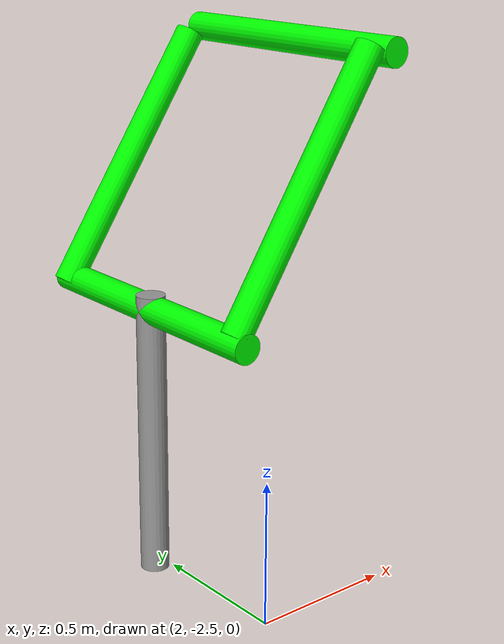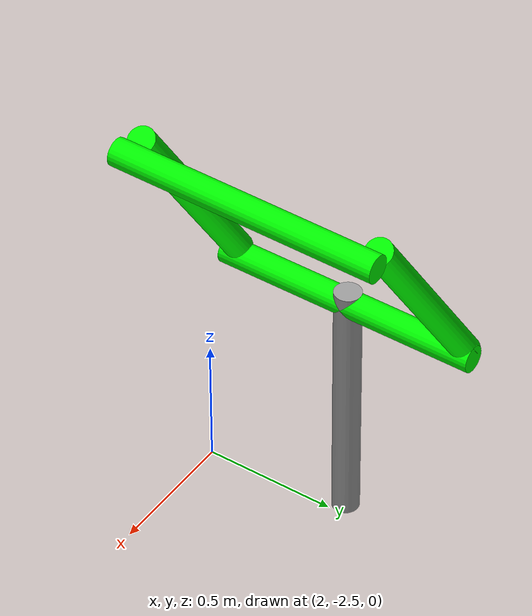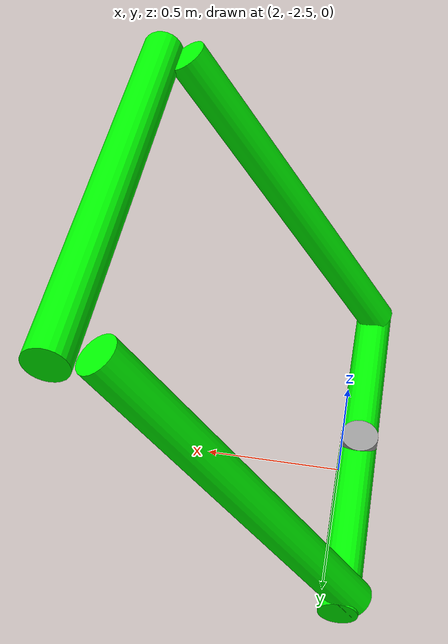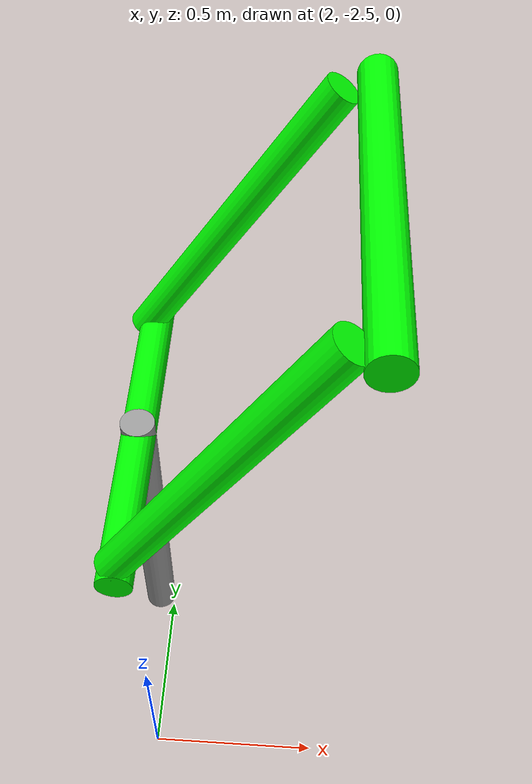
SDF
<?xml version='1.0'?>
<sdf version='1.7'>
  <model name='Gate_60'>
    <link name='link_0'>
      <inertial>
        <mass>0</mass>
        <inertia>
          <ixx>0</ixx>
          <ixy>0</ixy>
          <ixz>0</ixz>
          <iyy>0</iyy>
          <iyz>0</iyz>
          <izz>0</izz>
        </inertia>
        <pose>0 0 0 0 -0 0</pose>
      </inertial>
      <pose>2.20972 -2.41228 1.39604 0 0.567371 0</pose>
      <gravity>1</gravity>
      <self_collide>0</self_collide>
      <kinematic>0</kinematic>
      <enable_wind>0</enable_wind>
      <visual name='visual'>
        <pose>0 0 0 0 -0 0</pose>
        <geometry>
          <cylinder>
            <radius>0.05</radius>
            <length>1</length>
          </cylinder>
        </geometry>
        <material>
          <lighting>1</lighting>
          <script>
            <uri>file://media/materials/scripts/gazebo.material</uri>
            <name>Gazebo/Grey</name>
          </script>
          <shader type='pixel'>
            <normal_map>__default__</normal_map>
          </shader>
          <ambient>0 1 0 0</ambient>
          <diffuse>0 1 0 0</diffuse>
          <specular>0 1 0 0</specular>
          <emissive>0 1 0 0</emissive>
        </material>
        <transparency>0</transparency>
        <cast_shadows>1</cast_shadows>
      </visual>
      <collision name='collision'>
        <laser_retro>0</laser_retro>
        <max_contacts>10</max_contacts>
        <pose>0 0 0 0 -0 0</pose>
        <geometry>
          <cylinder>
            <radius>0.05</radius>
            <length>1</length>
          </cylinder>
        </geometry>
        <surface>
          <friction>
            <ode>
              <mu>1</mu>
              <mu2>1</mu2>
              <fdir1>0 0 0</fdir1>
              <slip1>0</slip1>
              <slip2>0</slip2>
            </ode>
            <torsional>
              <coefficient>1</coefficient>
              <patch_radius>0</patch_radius>
              <surface_radius>0</surface_radius>
              <use_patch_radius>1</use_patch_radius>
              <ode>
                <slip>0</slip>
              </ode>
            </torsional>
          </friction>
          <bounce>
            <restitution_coefficient>0</restitution_coefficient>
            <threshold>1e+06</threshold>
          </bounce>
          <contact>
            <collide_without_contact>0</collide_without_contact>
            <collide_without_contact_bitmask>1</collide_without_contact_bitmask>
            <collide_bitmask>1</collide_bitmask>
            <ode>
              <soft_cfm>0</soft_cfm>
              <soft_erp>0.2</soft_erp>
              <kp>1e+13</kp>
              <kd>1</kd>
              <max_vel>0.01</max_vel>
              <min_depth>0</min_depth>
            </ode>
            <bullet>
              <split_impulse>1</split_impulse>
              <split_impulse_penetration_threshold>-0.01</split_impulse_penetration_threshold>
              <soft_cfm>0</soft_cfm>
              <soft_erp>0.2</soft_erp>
              <kp>1e+13</kp>
              <kd>1</kd>
            </bullet>
          </contact>
        </surface>
      </collision>
    </link>
    <link name='link_0_clone'>
      <inertial>
        <mass>0</mass>
        <inertia>
          <ixx>0</ixx>
          <ixy>0</ixy>
          <ixz>0</ixz>
          <iyy>0</iyy>
          <iyz>0</iyz>
          <izz>0</izz>
        </inertia>
        <pose>0 0 0 0 -0 0</pose>
      </inertial>
      <pose>2.18918 -1.5122 1.35864 0 0.584194 0</pose>
      <gravity>1</gravity>
      <self_collide>0</self_collide>
      <kinematic>0</kinematic>
      <enable_wind>0</enable_wind>
      <visual name='visual'>
        <pose>0 0 0 0 -0 0</pose>
        <geometry>
          <cylinder>
            <radius>0.05</radius>
            <length>1</length>
          </cylinder>
        </geometry>
        <material>
          <lighting>1</lighting>
          <script>
            <uri>file://media/materials/scripts/gazebo.material</uri>
            <name>Gazebo/Grey</name>
          </script>
          <shader type='pixel'>
            <normal_map>__default__</normal_map>
          </shader>
          <ambient>0 1 0 0</ambient>
          <diffuse>0 1 0 0</diffuse>
          <specular>0 1 0 0</specular>
          <emissive>0 1 0 0</emissive>
        </material>
        <transparency>0</transparency>
        <cast_shadows>1</cast_shadows>
      </visual>
      <collision name='collision'>
        <laser_retro>0</laser_retro>
        <max_contacts>10</max_contacts>
        <pose>0 0 0 0 -0 0</pose>
        <geometry>
          <cylinder>
            <radius>0.05</radius>
            <length>1</length>
          </cylinder>
        </geometry>
        <surface>
          <friction>
            <ode>
              <mu>1</mu>
              <mu2>1</mu2>
              <fdir1>0 0 0</fdir1>
              <slip1>0</slip1>
              <slip2>0</slip2>
            </ode>
            <torsional>
              <coefficient>1</coefficient>
              <patch_radius>0</patch_radius>
              <surface_radius>0</surface_radius>
              <use_patch_radius>1</use_patch_radius>
              <ode>
                <slip>0</slip>
              </ode>
            </torsional>
          </friction>
          <bounce>
            <restitution_coefficient>0</restitution_coefficient>
            <threshold>1e+06</threshold>
          </bounce>
          <contact>
            <collide_without_contact>0</collide_without_contact>
            <collide_without_contact_bitmask>1</collide_without_contact_bitmask>
            <collide_bitmask>1</collide_bitmask>
            <ode>
              <soft_cfm>0</soft_cfm>
              <soft_erp>0.2</soft_erp>
              <kp>1e+13</kp>
              <kd>1</kd>
              <max_vel>0.01</max_vel>
              <min_depth>0</min_depth>
            </ode>
            <bullet>
              <split_impulse>1</split_impulse>
              <split_impulse_penetration_threshold>-0.01</split_impulse_penetration_threshold>
              <soft_cfm>0</soft_cfm>
              <soft_erp>0.2</soft_erp>
              <kp>1e+13</kp>
              <kd>1</kd>
            </bullet>
          </contact>
        </surface>
      </collision>
    </link>
    <link name='link_0_clone_0'>
      <inertial>
        <mass>0</mass>
        <inertia>
          <ixx>0</ixx>
          <ixy>0</ixy>
          <ixz>0</ixz>
          <iyy>0</iyy>
          <iyz>0</iyz>
          <izz>0</izz>
        </inertia>
        <pose>0 0 0 0 -0 0</pose>
      </inertial>
      <pose>2.5465 -1.96195 1.7911 1.56387 -0 0</pose>
      <gravity>1</gravity>
      <self_collide>0</self_collide>
      <kinematic>0</kinematic>
      <enable_wind>0</enable_wind>
      <visual name='visual'>
        <pose>0 0 0 0 -0 0</pose>
        <geometry>
          <cylinder>
            <radius>0.05</radius>
            <length>1</length>
          </cylinder>
        </geometry>
        <material>
          <lighting>1</lighting>
          <script>
            <uri>file://media/materials/scripts/gazebo.material</uri>
            <name>Gazebo/Grey</name>
          </script>
          <shader type='pixel'>
            <normal_map>__default__</normal_map>
          </shader>
          <ambient>0 1 0 0</ambient>
          <diffuse>0 1 0 0</diffuse>
          <specular>0 1 0 0</specular>
          <emissive>0 1 0 0</emissive>
        </material>
        <transparency>0</transparency>
        <cast_shadows>1</cast_shadows>
      </visual>
      <collision name='collision'>
        <laser_retro>0</laser_retro>
        <max_contacts>10</max_contacts>
        <pose>0 0 0 0 -0 0</pose>
        <geometry>
          <cylinder>
            <radius>0.05</radius>
            <length>1</length>
          </cylinder>
        </geometry>
        <surface>
          <friction>
            <ode>
              <mu>1</mu>
              <mu2>1</mu2>
              <fdir1>0 0 0</fdir1>
              <slip1>0</slip1>
              <slip2>0</slip2>
            </ode>
            <torsional>
              <coefficient>1</coefficient>
              <patch_radius>0</patch_radius>
              <surface_radius>0</surface_radius>
              <use_patch_radius>1</use_patch_radius>
              <ode>
                <slip>0</slip>
              </ode>
            </torsional>
          </friction>
          <bounce>
            <restitution_coefficient>0</restitution_coefficient>
            <threshold>1e+06</threshold>
          </bounce>
          <contact>
            <collide_without_contact>0</collide_without_contact>
            <collide_without_contact_bitmask>1</collide_without_contact_bitmask>
            <collide_bitmask>1</collide_bitmask>
            <ode>
              <soft_cfm>0</soft_cfm>
              <soft_erp>0.2</soft_erp>
              <kp>1e+13</kp>
              <kd>1</kd>
              <max_vel>0.01</max_vel>
              <min_depth>0</min_depth>
            </ode>
            <bullet>
              <split_impulse>1</split_impulse>
              <split_impulse_penetration_threshold>-0.01</split_impulse_penetration_threshold>
              <soft_cfm>0</soft_cfm>
              <soft_erp>0.2</soft_erp>
              <kp>1e+13</kp>
              <kd>1</kd>
            </bullet>
          </contact>
        </surface>
      </collision>
    </link>
    <link name='link_0_clone_1'>
      <inertial>
        <mass>1</mass>
        <inertia>
          <ixx>0.145833</ixx>
          <ixy>0</ixy>
          <ixz>0</ixz>
          <iyy>0.145833</iyy>
          <iyz>0</iyz>
          <izz>0.125</izz>
        </inertia>
        <pose>0 0 0 0 -0 0</pose>
      </inertial>
      <pose>1.94885 -1.96224 0.949569 1.57166 -0 0</pose>
      <gravity>1</gravity>
      <self_collide>0</self_collide>
      <kinematic>0</kinematic>
      <enable_wind>0</enable_wind>
      <visual name='visual'>
        <pose>0 0 0 0 -0 0</pose>
        <geometry>
          <cylinder>
            <radius>0.05</radius>
            <length>1</length>
          </cylinder>
        </geometry>
        <material>
          <lighting>1</lighting>
          <script>
            <uri>file://media/materials/scripts/gazebo.material</uri>
            <name>Gazebo/Grey</name>
          </script>
          <shader type='pixel'>
            <normal_map>__default__</normal_map>
          </shader>
          <ambient>0 1 0 0</ambient>
          <diffuse>0 1 0 0</diffuse>
          <specular>0 1 0 0</specular>
          <emissive>0 1 0 1</emissive>
        </material>
        <transparency>0</transparency>
        <cast_shadows>1</cast_shadows>
      </visual>
      <collision name='collision'>
        <laser_retro>0</laser_retro>
        <max_contacts>10</max_contacts>
        <pose>0 0 0 0 -0 0</pose>
        <geometry>
          <cylinder>
            <radius>0.05</radius>
            <length>1</length>
          </cylinder>
        </geometry>
        <surface>
          <friction>
            <ode>
              <mu>1</mu>
              <mu2>1</mu2>
              <fdir1>0 0 0</fdir1>
              <slip1>0</slip1>
              <slip2>0</slip2>
            </ode>
            <torsional>
              <coefficient>1</coefficient>
              <patch_radius>0</patch_radius>
              <surface_radius>0</surface_radius>
              <use_patch_radius>1</use_patch_radius>
              <ode>
                <slip>0</slip>
              </ode>
            </torsional>
          </friction>
          <bounce>
            <restitution_coefficient>0</restitution_coefficient>
            <threshold>1e+06</threshold>
          </bounce>
          <contact>
            <collide_without_contact>0</collide_without_contact>
            <collide_without_contact_bitmask>1</collide_without_contact_bitmask>
            <collide_bitmask>1</collide_bitmask>
            <ode>
              <soft_cfm>0</soft_cfm>
              <soft_erp>0.2</soft_erp>
              <kp>1e+13</kp>
              <kd>1</kd>
              <max_vel>0.01</max_vel>
              <min_depth>0</min_depth>
            </ode>
            <bullet>
              <split_impulse>1</split_impulse>
              <split_impulse_penetration_threshold>-0.01</split_impulse_penetration_threshold>
              <soft_cfm>0</soft_cfm>
              <soft_erp>0.2</soft_erp>
              <kp>1e+13</kp>
              <kd>1</kd>
            </bullet>
          </contact>
        </surface>
      </collision>
    </link>
    <link name='link_0_clone_2'>
      <inertial>
        <mass>1</mass>
        <inertia>
          <ixx>0.145833</ixx>
          <ixy>0</ixy>
          <ixz>0</ixz>
          <iyy>0.145833</iyy>
          <iyz>0</iyz>
          <izz>0.125</izz>
        </inertia>
        <pose>0 0 0 0 -0 0</pose>
      </inertial>
      <pose>1.94885 -1.96224 0.499999 0 -0 0</pose>
      <gravity>1</gravity>
      <self_collide>0</self_collide>
      <kinematic>0</kinematic>
      <enable_wind>0</enable_wind>
      <visual name='visual'>
        <pose>0 0 0 0 -0 0</pose>
        <geometry>
          <cylinder>
            <radius>0.05</radius>
            <length>1</length>
          </cylinder>
        </geometry>
        <material>
          <lighting>1</lighting>
          <script>
            <uri>file://media/materials/scripts/gazebo.material</uri>
            <name>Gazebo/Grey</name>
          </script>
          <shader type='pixel'>
            <normal_map>__default__</normal_map>
          </shader>
          <ambient>0.3 0.3 0.3 1</ambient>
          <diffuse>0.7 0.7 0.7 1</diffuse>
          <specular>0.01 0.01 0.01 1</specular>
          <emissive>0 0 0 1</emissive>
        </material>
        <transparency>0</transparency>
        <cast_shadows>1</cast_shadows>
      </visual>
      <collision name='collision'>
        <laser_retro>0</laser_retro>
        <max_contacts>10</max_contacts>
        <pose>0 0 0 0 -0 0</pose>
        <geometry>
          <cylinder>
            <radius>0.05</radius>
            <length>1</length>
          </cylinder>
        </geometry>
        <surface>
          <friction>
            <ode>
              <mu>1</mu>
              <mu2>1</mu2>
              <fdir1>0 0 0</fdir1>
              <slip1>0</slip1>
              <slip2>0</slip2>
            </ode>
            <torsional>
              <coefficient>1</coefficient>
              <patch_radius>0</patch_radius>
              <surface_radius>0</surface_radius>
              <use_patch_radius>1</use_patch_radius>
              <ode>
                <slip>0</slip>
              </ode>
            </torsional>
          </friction>
          <bounce>
            <restitution_coefficient>0</restitution_coefficient>
            <threshold>1e+06</threshold>
          </bounce>
          <contact>
            <collide_without_contact>0</collide_without_contact>
            <collide_without_contact_bitmask>1</collide_without_contact_bitmask>
            <collide_bitmask>1</collide_bitmask>
            <ode>
              <soft_cfm>0</soft_cfm>
              <soft_erp>0.2</soft_erp>
              <kp>1e+13</kp>
              <kd>1</kd>
              <max_vel>0.01</max_vel>
              <min_depth>0</min_depth>
            </ode>
            <bullet>
              <split_impulse>1</split_impulse>
              <split_impulse_penetration_threshold>-0.01</split_impulse_penetration_threshold>
              <soft_cfm>0</soft_cfm>
              <soft_erp>0.2</soft_erp>
              <kp>1e+13</kp>
              <kd>1</kd>
            </bullet>
          </contact>
        </surface>
      </collision>
    </link>
    <joint name='link_0_JOINT_3' type='revolute'>
      <parent>link_0</parent>
      <child>link_0_clone_0</child>
      <pose>0 0 0 0 -0 0</pose>
      <axis>
        <xyz>1 0 0</xyz>
        <limit>
          <lower>-1.79769e+308</lower>
          <upper>1.79769e+308</upper>
          <effort>-1</effort>
          <velocity>-1</velocity>
        </limit>
        <dynamics>
          <spring_reference>0</spring_reference>
          <spring_stiffness>0</spring_stiffness>
          <damping>0</damping>
          <friction>0</friction>
        </dynamics>
      </axis>
      <physics>
        <ode>
          <limit>
            <cfm>0</cfm>
            <erp>0.2</erp>
          </limit>
          <suspension>
            <cfm>0</cfm>
            <erp>0.2</erp>
          </suspension>
        </ode>
      </physics>
    </joint>
    <joint name='link_0_clone_1_JOINT_1' type='fixed'>
      <parent>link_0_clone_1</parent>
      <child>link_0_clone</child>
      <pose>0 0 0 0 -0 0</pose>
      <physics>
        <ode>
          <limit>
            <cfm>0</cfm>
            <erp>0.2</erp>
          </limit>
          <suspension>
            <cfm>0</cfm>
            <erp>0.2</erp>
          </suspension>
        </ode>
      </physics>
    </joint>
    <joint name='link_0_clone_1_JOINT_2' type='fixed'>
      <parent>link_0_clone_1</parent>
      <child>link_0</child>
      <pose>0 0 0 0 -0 0</pose>
      <physics>
        <ode>
          <limit>
            <cfm>0</cfm>
            <erp>0.2</erp>
          </limit>
          <suspension>
            <cfm>0</cfm>
            <erp>0.2</erp>
          </suspension>
        </ode>
      </physics>
    </joint>
    <joint name='link_0_clone_2_JOINT_0' type='fixed'>
      <parent>link_0_clone_2</parent>
      <child>link_0_clone_1</child>
      <pose>0 0 0 0 -0 0</pose>
      <physics>
        <ode>
          <limit>
            <cfm>0</cfm>
            <erp>0.2</erp>
          </limit>
          <suspension>
            <cfm>0</cfm>
            <erp>0.2</erp>
          </suspension>
        </ode>
      </physics>
    </joint>
    <static>0</static>
    <allow_auto_disable>1</allow_auto_disable>
  </model>
</sdf>
